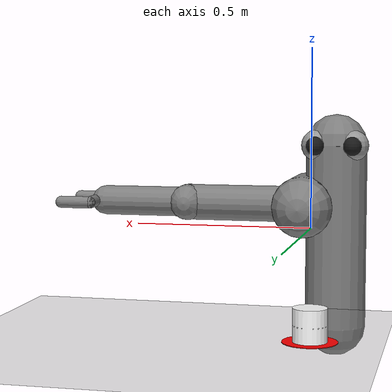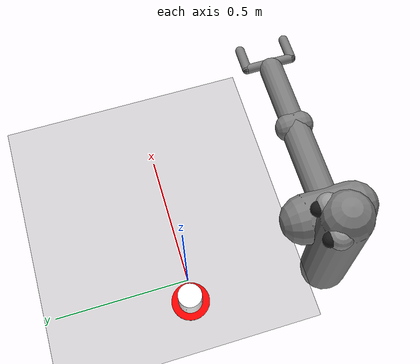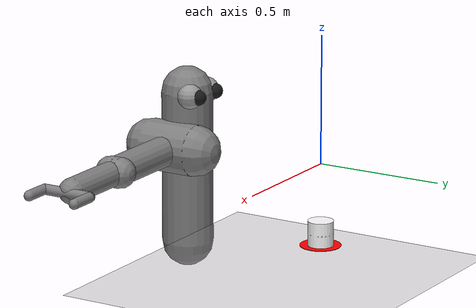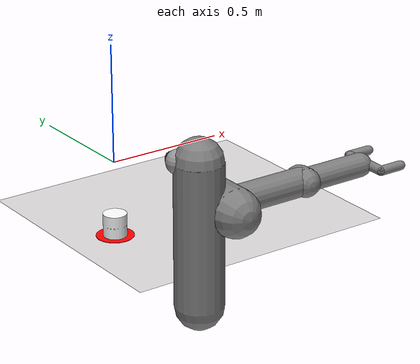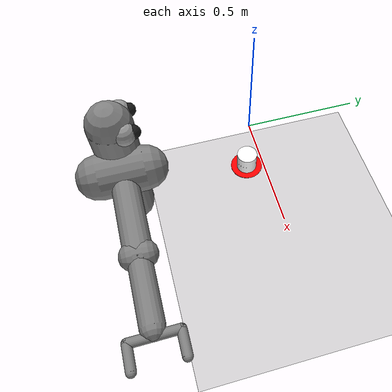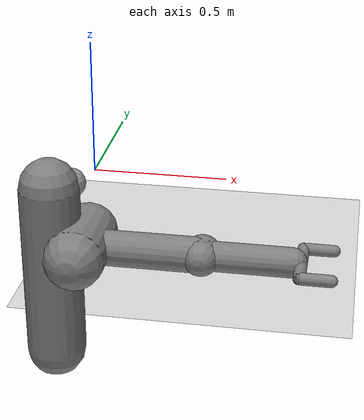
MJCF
<mujoco model="arm3d">
  <compiler inertiafromgeom="true" angle="radian" coordinate="local"/>
  <option timestep="0.01" gravity="0 0 0" iterations="20" integrator="Euler" />

  <default>
    <joint armature='0.04' damping="1" limited="true"/>
    <geom friction=".8 .1 .1" density="300" margin="0.002" condim="1" contype="0" conaffinity="0"/>
  </default>

  <worldbody>
    <light diffuse=".5 .5 .5" pos="0 0 3" dir="0 0 -1"/>
    <geom name="table" type="plane" pos="0 0.5 -0.325" size="1 1 0.1" contype="1" conaffinity="1"/>

    <body name="r_shoulder_pan_link" pos="0 -0.6 0">
      <geom name="e1" type="sphere" rgba="0.6 0.6 0.6 1" pos="-0.06 0.05 0.2" size="0.05" />
      <geom name="e2" type="sphere" rgba="0.6 0.6 0.6 1" pos=" 0.06 0.05 0.2" size="0.05" />
      <geom name="e1p" type="sphere" rgba="0.1 0.1 0.1 1" pos="-0.06 0.09 0.2" size="0.03" />
      <geom name="e2p" type="sphere" rgba="0.1 0.1 0.1 1" pos=" 0.06 0.09 0.2" size="0.03" />
      <geom name="sp" type="capsule" fromto="0 0 -0.4 0 0 0.2" size="0.1" />
      <joint name="r_shoulder_pan_joint" type="hinge" pos="0 0 0" axis="0 0 1" range="-2.2854 1.714602" damping="1.0" />

      <body name="r_shoulder_lift_link" pos="0.1 0 0">
        <geom name="sl" type="capsule" fromto="0 -0.1 0 0 0.1 0" size="0.1" />
        <joint name="r_shoulder_lift_joint" type="hinge" pos="0 0 0" axis="0 1 0" range="-0.5236 1.3963" damping="1.0" />

        <body name="r_upper_arm_roll_link" pos="0 0 0">
          <geom name="uar" type="capsule" fromto="-0.1 0 0 0.1 0 0" size="0.02" />
          <joint name="r_upper_arm_roll_joint" type="hinge" pos="0 0 0" axis="1 0 0" range="-1.5 1.7" damping="0.1" />

          <body name="r_upper_arm_link" pos="0 0 0">
            <geom name="ua" type="capsule" fromto="0 0 0 0.4 0 0" size="0.06" />

            <body name="r_elbow_flex_link" pos="0.4 0 0">
              <geom name="ef" type="capsule" fromto="0 -0.02 0 0.0 0.02 0" size="0.06" />
              <joint name="r_elbow_flex_joint" type="hinge" pos="0 0 0" axis="0 1 0" range="-2.3213 0" damping="0.1" />

              <body name="r_forearm_roll_link" pos="0 0 0">
                <geom name="fr" type="capsule" fromto="-0.1 0 0 0.1 0 0" size="0.02" />
                <joint name="r_forearm_roll_joint" type="hinge" limited="true" pos="0 0 0" axis="1 0 0" damping=".1" range="-1.5 1.5"/>

                <body name="r_forearm_link" pos="0 0 0">
                  <geom name="fa" type="capsule" fromto="0 0 0 0.291 0 0" size="0.05" />

                  <body name="r_wrist_flex_link" pos="0.321 0 0">
                    <geom name="wf" type="capsule" fromto="0 -0.02 0 0 0.02 0" size="0.01" />
                    <joint name="r_wrist_flex_joint" type="hinge" pos="0 0 0" axis="0 1 0" range="-1.094 0" damping=".1" />

                    <body name="r_wrist_roll_link" pos="0 0 0">
                      <joint name="r_wrist_roll_joint" type="hinge" pos="0 0 0" limited="true" axis="1 0 0" damping="0.1" range="-1.5 1.5"/>
                      <body name="tips_arm" pos="0 0 0">
                        <geom name="tip_arml" type="sphere" pos="0.1 -0.1 0." size="0.01" />
                        <geom name="tip_armr" type="sphere" pos="0.1 0.1 0." size="0.01" />
                      </body>
                      <geom type="capsule" fromto="0 -0.1 0. 0.0 +0.1 0" size="0.02" contype="1" conaffinity="1" />
                      <geom type="capsule" fromto="0 -0.1 0. 0.1 -0.1 0" size="0.02" contype="1" conaffinity="1" />
                      <geom type="capsule" fromto="0 +0.1 0. 0.1 +0.1 0." size="0.02" contype="1" conaffinity="1" />
                    </body>
                  </body>
                </body>
              </body>
            </body>
          </body>
        </body>
      </body>
    </body>

    <body name="object" pos="0.0 0.0 -0.275" >
      <geom name="object_sphere"  rgba="1 1 1 1" type="sphere" size="0.05 0.05 0.05" density="0.00001" conaffinity="1"/>
      <geom name="object_cylinder" rgba="1 1 1 1" type="cylinder" size="0.05 0.05 0.05" density="0.00001" contype="1" conaffinity="0"/>
      <joint name="object_slidey" type="slide" pos="0 0 0" axis="0 1 0" range="-10.3213 10.3" damping="0.5"/>
      <joint name="object_slidex" type="slide" pos="0 0 0" axis="1 0 0" range="-10.3213 10.3" damping="0.5"/>
    </body>

    <body name="goal_red" pos="0.0 0.0 -0.3230">
      <geom rgba="1 0 0 1" type="cylinder" size="0.08 0.001 0.1" density='0.00001' contype="0" conaffinity="0"/>
      <joint name="goal_red_slidey" type="slide" pos="0 0 0" axis="0 1 0" range="-10.3213 10.3" damping="0.5"/>
      <joint name="goal_red_slidex" type="slide" pos="0 0 0" axis="1 0 0" range="-10.3213 10.3" damping="0.5"/>
    </body>

    <body name="goal_blue" pos="0.0 0.0 -0.3230">
      <geom rgba="0 0 1 1" type="cylinder" size="0.08 0.001 0.1" density='0.00001' contype="0" conaffinity="0"/>
      <joint name="goal_blue_slidey" type="slide" pos="0 0 0" axis="0 1 0" range="-10.3213 10.3" damping="0.5"/>
      <joint name="goal_blue_slidex" type="slide" pos="0 0 0" axis="1 0 0" range="-10.3213 10.3" damping="0.5"/>
    </body>

    <body name="goal_green" pos="0.0 0.0 -0.3230">
      <geom rgba="0 1 0 1" type="cylinder" size="0.08 0.001 0.1" density='0.00001' contype="0" conaffinity="0"/>
      <joint name="goal_green_slidey" type="slide" pos="0 0 0" axis="0 1 0" range="-10.3213 10.3" damping="0.5"/>
      <joint name="goal_green_slidex" type="slide" pos="0 0 0" axis="1 0 0" range="-10.3213 10.3" damping="0.5"/>
    </body>
  </worldbody>

  <actuator>
    <motor joint="r_shoulder_pan_joint" ctrlrange="-2.0 2.0" ctrllimited="true" />
    <motor joint="r_shoulder_lift_joint" ctrlrange="-2.0 2.0" ctrllimited="true" />
    <motor joint="r_upper_arm_roll_joint" ctrlrange="-2.0 2.0" ctrllimited="true" />
    <motor joint="r_elbow_flex_joint" ctrlrange="-2.0 2.0" ctrllimited="true" />
    <motor joint="r_forearm_roll_joint" ctrlrange="-2.0 2.0" ctrllimited="true" />
    <motor joint="r_wrist_flex_joint" ctrlrange="-2.0 2.0" ctrllimited="true" />
    <motor joint="r_wrist_roll_joint" ctrlrange="-2.0 2.0" ctrllimited="true"/>
  </actuator>
</mujoco>
